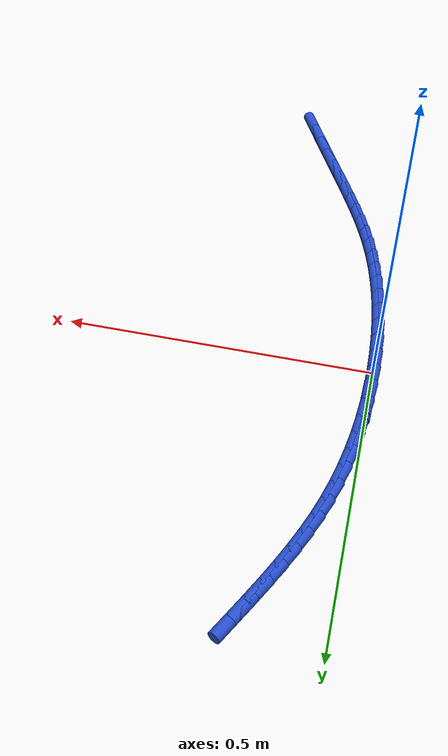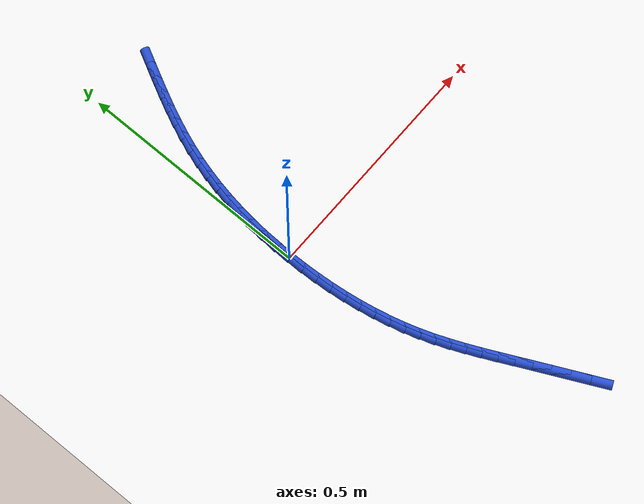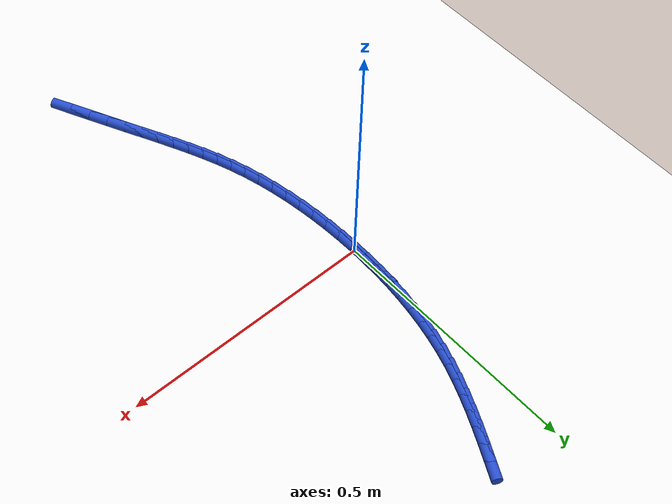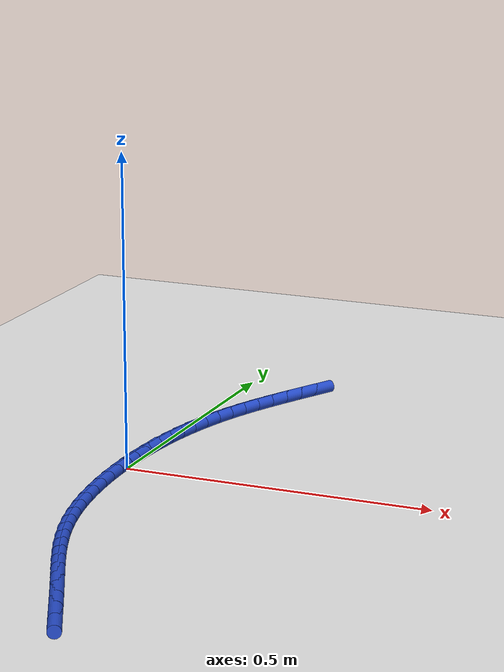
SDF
<sdf version="1.6">
 <world name="default">
  <model name="ground_plane">
   <static>1</static>
   <link name="link">
    <collision name="collision">
     <geometry><plane><normal>0 0 1</normal><size>100 100</size></plane></geometry>
     <surface><friction><ode><mu>100</mu><mu2>50</mu2></ode></friction></surface>
    </collision>
    <visual name="visual">
     <cast_shadows>0</cast_shadows>
     <geometry><plane><normal>0 0 1</normal><size>100 100</size></plane></geometry>
     <material>
      <script><uri>file://media/materials/scripts/gazebo.material</uri><name>Gazebo/WhiteGlow</name></script>
     </material>
    </visual>
   </link>
  </model>
  <model name="line">
   <link name="link_0">
    <pose>1.5612511283791264e-17 6.938893903907228e-17 0.01 0 1.57 1.5590957902085196</pose>
    <collision name="collision">
     <geometry><cylinder><radius>0.01</radius><length>0.08</length></cylinder></geometry>
    </collision>
    <visual name="visual">
     <material>
      <script><name>Gazebo/Blue</name><uri>file://media/materials/scripts/gazebo.material</uri></script>
     </material>
     <geometry><cylinder><radius>0.01</radius><length>0.08</length></cylinder></geometry>
    </visual>
   </link>
   <link name="link_1">
    <pose>0.00039795358519194497 0.03401001499382369 0.01 0 1.57 1.527344254759994</pose>
    <collision name="collision">
     <geometry><cylinder><radius>0.01</radius><length>0.08</length></cylinder></geometry>
    </collision>
    <visual name="visual">
     <material>
      <script><name>Gazebo/Blue</name><uri>file://media/materials/scripts/gazebo.material</uri></script>
     </material>
     <geometry><cylinder><radius>0.01</radius><length>0.08</length></cylinder></geometry>
    </visual>
   </link>
   <link name="link_2">
    <pose>0.0018704710210854767 0.06787699775144895 0.01 0 1.57 1.4943016651344494</pose>
    <collision name="collision">
     <geometry><cylinder><radius>0.01</radius><length>0.08</length></cylinder></geometry>
    </collision>
    <visual name="visual">
     <material>
      <script><name>Gazebo/Blue</name><uri>file://media/materials/scripts/gazebo.material</uri></script>
     </material>
     <geometry><cylinder><radius>0.01</radius><length>0.08</length></cylinder></geometry>
    </visual>
   </link>
   <link name="link_3">
    <pose>0.004448175908305287 0.1015090854414555 0.01 0 1.57 1.4597558159385076</pose>
    <collision name="collision">
     <geometry><cylinder><radius>0.01</radius><length>0.08</length></cylinder></geometry>
    </collision>
    <visual name="visual">
     <material>
      <script><name>Gazebo/Blue</name><uri>file://media/materials/scripts/gazebo.material</uri></script>
     </material>
     <geometry><cylinder><radius>0.01</radius><length>0.08</length></cylinder></geometry>
    </visual>
   </link>
   <link name="link_4">
    <pose>0.00816169184747604 0.1348144152324228 0.01 0 1.57 1.4234845401696197</pose>
    <collision name="collision">
     <geometry><cylinder><radius>0.01</radius><length>0.08</length></cylinder></geometry>
    </collision>
    <visual name="visual">
     <material>
      <script><name>Gazebo/Blue</name><uri>file://media/materials/scripts/gazebo.material</uri></script>
     </material>
     <geometry><cylinder><radius>0.01</radius><length>0.08</length></cylinder></geometry>
    </visual>
   </link>
   <link name="link_5">
    <pose>0.013041642439222418 0.16770112429293058 0.01 0 1.57 1.3852554352615685</pose>
    <collision name="collision">
     <geometry><cylinder><radius>0.01</radius><length>0.08</length></cylinder></geometry>
    </collision>
    <visual name="visual">
     <material>
      <script><name>Gazebo/Blue</name><uri>file://media/materials/scripts/gazebo.material</uri></script>
     </material>
     <geometry><cylinder><radius>0.01</radius><length>0.08</length></cylinder></geometry>
    </visual>
   </link>
   <link name="link_6">
    <pose>0.019118651284169095 0.20007734979155828 0.01 0 1.57 1.344826626539135</pose>
    <collision name="collision">
     <geometry><cylinder><radius>0.01</radius><length>0.08</length></cylinder></geometry>
    </collision>
    <visual name="visual">
     <material>
      <script><name>Gazebo/Blue</name><uri>file://media/materials/scripts/gazebo.material</uri></script>
     </material>
     <geometry><cylinder><radius>0.01</radius><length>0.08</length></cylinder></geometry>
    </visual>
   </link>
   <link name="link_7">
    <pose>0.026423341982940725 0.2318512288968855 0.01 0 1.57 1.3019489680391543</pose>
    <collision name="collision">
     <geometry><cylinder><radius>0.01</radius><length>0.08</length></cylinder></geometry>
    </collision>
    <visual name="visual">
     <material>
      <script><name>Gazebo/Blue</name><uri>file://media/materials/scripts/gazebo.material</uri></script>
     </material>
     <geometry><cylinder><radius>0.01</radius><length>0.08</length></cylinder></geometry>
    </visual>
   </link>
   <link name="link_8">
    <pose>0.034986338136162004 0.2629308987774918 0.01 0 1.57 1.2569548308997691</pose>
    <collision name="collision">
     <geometry><cylinder><radius>0.01</radius><length>0.08</length></cylinder></geometry>
    </collision>
    <visual name="visual">
     <material>
      <script><name>Gazebo/Blue</name><uri>file://media/materials/scripts/gazebo.material</uri></script>
     </material>
     <geometry><cylinder><radius>0.01</radius><length>0.08</length></cylinder></geometry>
    </visual>
   </link>
   <link name="link_9">
    <pose>0.04482512598660589 0.2932443470038685 0.01 0 1.57 1.2145632126685058</pose>
    <collision name="collision">
     <geometry><cylinder><radius>0.01</radius><length>0.08</length></cylinder></geometry>
    </collision>
    <visual name="visual">
     <material>
      <script><name>Gazebo/Blue</name><uri>file://media/materials/scripts/gazebo.material</uri></script>
     </material>
     <geometry><cylinder><radius>0.01</radius><length>0.08</length></cylinder></geometry>
    </visual>
   </link>
   <link name="link_10">
    <pose>0.05585215579845866 0.32287826934443 0.01 0 1.57 1.1776106224616119</pose>
    <collision name="collision">
     <geometry><cylinder><radius>0.01</radius><length>0.08</length></cylinder></geometry>
    </collision>
    <visual name="visual">
     <material>
      <script><name>Gazebo/Blue</name><uri>file://media/materials/scripts/gazebo.material</uri></script>
     </material>
     <geometry><cylinder><radius>0.01</radius><length>0.08</length></cylinder></geometry>
    </visual>
   </link>
   <link name="link_11">
    <pose>0.06792950222542031 0.35199547855595215 0.01 0 1.57 1.1466214942020267</pose>
    <collision name="collision">
     <geometry><cylinder><radius>0.01</radius><length>0.08</length></cylinder></geometry>
    </collision>
    <visual name="visual">
     <material>
      <script><name>Gazebo/Blue</name><uri>file://media/materials/scripts/gazebo.material</uri></script>
     </material>
     <geometry><cylinder><radius>0.01</radius><length>0.08</length></cylinder></geometry>
    </visual>
   </link>
   <link name="link_12">
    <pose>0.0809189224088432 0.38075926715284397 0.01 0 1.57 1.1219149535525959</pose>
    <collision name="collision">
     <geometry><cylinder><radius>0.01</radius><length>0.08</length></cylinder></geometry>
    </collision>
    <visual name="visual">
     <material>
      <script><name>Gazebo/Blue</name><uri>file://media/materials/scripts/gazebo.material</uri></script>
     </material>
     <geometry><cylinder><radius>0.01</radius><length>0.08</length></cylinder></geometry>
    </visual>
   </link>
   <link name="link_13">
    <pose>0.09468217349007967 0.4093329276495145 0.01 0 1.57 1.1036399254134206</pose>
    <collision name="collision">
     <geometry><cylinder><radius>0.01</radius><length>0.08</length></cylinder></geometry>
    </collision>
    <visual name="visual">
     <material>
      <script><name>Gazebo/Blue</name><uri>file://media/materials/scripts/gazebo.material</uri></script>
     </material>
     <geometry><cylinder><radius>0.01</radius><length>0.08</length></cylinder></geometry>
    </visual>
   </link>
   <link name="link_14">
    <pose>0.1090810126104822 0.43787975256037287 0.01 0 1.57 1.0918019489527087</pose>
    <collision name="collision">
     <geometry><cylinder><radius>0.01</radius><length>0.08</length></cylinder></geometry>
    </collision>
    <visual name="visual">
     <material>
      <script><name>Gazebo/Blue</name><uri>file://media/materials/scripts/gazebo.material</uri></script>
     </material>
     <geometry><cylinder><radius>0.01</radius><length>0.08</length></cylinder></geometry>
    </visual>
   </link>
   <link name="link_15">
    <pose>0.12397719691140308 0.46656303439982805 0.01 0 1.57 1.0862897684399544</pose>
    <collision name="collision">
     <geometry><cylinder><radius>0.01</radius><length>0.08</length></cylinder></geometry>
    </collision>
    <visual name="visual">
     <material>
      <script><name>Gazebo/Blue</name><uri>file://media/materials/scripts/gazebo.material</uri></script>
     </material>
     <geometry><cylinder><radius>0.01</radius><length>0.08</length></cylinder></geometry>
    </visual>
   </link>
   <link name="link_211">
    <pose>0.19179995478081058 -0.6150450424542935 0.01 0 1.57 -1.1196787258851202</pose>
    <collision name="collision">
     <geometry><cylinder><radius>0.01</radius><length>0.08</length></cylinder></geometry>
    </collision>
    <visual name="visual">
     <material>
      <script><name>Gazebo/Blue</name><uri>file://media/materials/scripts/gazebo.material</uri></script>
     </material>
     <geometry><cylinder><radius>0.01</radius><length>0.08</length></cylinder></geometry>
    </visual>
   </link>
   <link name="link_212">
    <pose>0.1730713750970058 -0.5763843123209897 0.01 0 1.57 -1.1206210887941224</pose>
    <collision name="collision">
     <geometry><cylinder><radius>0.01</radius><length>0.08</length></cylinder></geometry>
    </collision>
    <visual name="visual">
     <material>
      <script><name>Gazebo/Blue</name><uri>file://media/materials/scripts/gazebo.material</uri></script>
     </material>
     <geometry><cylinder><radius>0.01</radius><length>0.08</length></cylinder></geometry>
    </visual>
   </link>
   <link name="link_213">
    <pose>0.15512430109936418 -0.5392476620519215 0.01 0 1.57 -1.1179911878615287</pose>
    <collision name="collision">
     <geometry><cylinder><radius>0.01</radius><length>0.08</length></cylinder></geometry>
    </collision>
    <visual name="visual">
     <material>
      <script><name>Gazebo/Blue</name><uri>file://media/materials/scripts/gazebo.material</uri></script>
     </material>
     <geometry><cylinder><radius>0.01</radius><length>0.08</length></cylinder></geometry>
    </visual>
   </link>
   <link name="link_214">
    <pose>0.13800994131453947 -0.5040705293670197 0.01 0 1.57 -1.115353807216899</pose>
    <collision name="collision">
     <geometry><cylinder><radius>0.01</radius><length>0.08</length></cylinder></geometry>
    </collision>
    <visual name="visual">
     <material>
      <script><name>Gazebo/Blue</name><uri>file://media/materials/scripts/gazebo.material</uri></script>
     </material>
     <geometry><cylinder><radius>0.01</radius><length>0.08</length></cylinder></geometry>
    </visual>
   </link>
   <link name="link_215">
    <pose>0.12176984831348778 -0.47091295502308594 0.01 0 1.57 -1.117827241330881</pose>
    <collision name="collision">
     <geometry><cylinder><radius>0.01</radius><length>0.08</length></cylinder></geometry>
    </collision>
    <visual name="visual">
     <material>
      <script><name>Gazebo/Blue</name><uri>file://media/materials/scripts/gazebo.material</uri></script>
     </material>
     <geometry><cylinder><radius>0.01</radius><length>0.08</length></cylinder></geometry>
    </visual>
   </link>
   <link name="link_216">
    <pose>0.10643453084071519 -0.43940562622136603 0.01 0 1.57 -1.1264869415494472</pose>
    <collision name="collision">
     <geometry><cylinder><radius>0.01</radius><length>0.08</length></cylinder></geometry>
    </collision>
    <visual name="visual">
     <material>
      <script><name>Gazebo/Blue</name><uri>file://media/materials/scripts/gazebo.material</uri></script>
     </material>
     <geometry><cylinder><radius>0.01</radius><length>0.08</length></cylinder></geometry>
    </visual>
   </link>
   <link name="link_217">
    <pose>0.09203389314210533 -0.40915572892161034 0.01 0 1.57 -1.1419399685530545</pose>
    <collision name="collision">
     <geometry><cylinder><radius>0.01</radius><length>0.08</length></cylinder></geometry>
    </collision>
    <visual name="visual">
     <material>
      <script><name>Gazebo/Blue</name><uri>file://media/materials/scripts/gazebo.material</uri></script>
     </material>
     <geometry><cylinder><radius>0.01</radius><length>0.08</length></cylinder></geometry>
    </visual>
   </link>
   <link name="link_218">
    <pose>0.0785978394635422 -0.3797704490835705 0.01 0 1.57 -1.1644422936986525</pose>
    <collision name="collision">
     <geometry><cylinder><radius>0.01</radius><length>0.08</length></cylinder></geometry>
    </collision>
    <visual name="visual">
     <material>
      <script><name>Gazebo/Blue</name><uri>file://media/materials/scripts/gazebo.material</uri></script>
     </material>
     <geometry><cylinder><radius>0.01</radius><length>0.08</length></cylinder></geometry>
    </visual>
   </link>
   <link name="link_219">
    <pose>0.06615627405090946 -0.35085697266699706 0.01 0 1.57 -1.1937814677735776</pose>
    <collision name="collision">
     <geometry><cylinder><radius>0.01</radius><length>0.08</length></cylinder></geometry>
    </collision>
    <visual name="visual">
     <material>
      <script><name>Gazebo/Blue</name><uri>file://media/materials/scripts/gazebo.material</uri></script>
     </material>
     <geometry><cylinder><radius>0.01</radius><length>0.08</length></cylinder></geometry>
    </visual>
   </link>
   <link name="link_220">
    <pose>0.05473910115009172 -0.3220224856316429 0.01 0 1.57 -1.2292103192321149</pose>
    <collision name="collision">
     <geometry><cylinder><radius>0.01</radius><length>0.08</length></cylinder></geometry>
    </collision>
    <visual name="visual">
     <material>
      <script><name>Gazebo/Blue</name><uri>file://media/materials/scripts/gazebo.material</uri></script>
     </material>
     <geometry><cylinder><radius>0.01</radius><length>0.08</length></cylinder></geometry>
    </visual>
   </link>
   <link name="link_221">
    <pose>0.04437622500697265 -0.2928741739372587 0.01 0 1.57 -1.2694569189764902</pose>
    <collision name="collision">
     <geometry><cylinder><radius>0.01</radius><length>0.08</length></cylinder></geometry>
    </collision>
    <visual name="visual">
     <material>
      <script><name>Gazebo/Blue</name><uri>file://media/materials/scripts/gazebo.material</uri></script>
     </material>
     <geometry><cylinder><radius>0.01</radius><length>0.08</length></cylinder></geometry>
    </visual>
   </link>
   <link name="link_222">
    <pose>0.03509747913180698 -0.26302020505161916 0.01 0 1.57 -1.311291437974732</pose>
    <collision name="collision">
     <geometry><cylinder><radius>0.01</radius><length>0.08</length></cylinder></geometry>
    </collision>
    <visual name="visual">
     <material>
      <script><name>Gazebo/Blue</name><uri>file://media/materials/scripts/gazebo.material</uri></script>
     </material>
     <geometry><cylinder><radius>0.01</radius><length>0.08</length></cylinder></geometry>
    </visual>
   </link>
   <link name="link_223">
    <pose>0.0269214743200955 -0.23222446972776226 0.01 0 1.57 -1.3507740607574792</pose>
    <collision name="collision">
     <geometry><cylinder><radius>0.01</radius><length>0.08</length></cylinder></geometry>
    </collision>
    <visual name="visual">
     <material>
      <script><name>Gazebo/Blue</name><uri>file://media/materials/scripts/gazebo.material</uri></script>
     </material>
     <geometry><cylinder><radius>0.01</radius><length>0.08</length></cylinder></geometry>
    </visual>
   </link>
   <link name="link_224">
    <pose>0.019843421376447637 -0.20057555051895648 0.01 0 1.57 -1.387899544516805</pose>
    <collision name="collision">
     <geometry><cylinder><radius>0.01</radius><length>0.08</length></cylinder></geometry>
    </collision>
    <visual name="visual">
     <material>
      <script><name>Gazebo/Blue</name><uri>file://media/materials/scripts/gazebo.material</uri></script>
     </material>
     <geometry><cylinder><radius>0.01</radius><length>0.08</length></cylinder></geometry>
    </visual>
   </link>
   <link name="link_225">
    <pose>0.01385560435543654 -0.1682026407523051 0.01 0 1.57 -1.4230890155699754</pose>
    <collision name="collision">
     <geometry><cylinder><radius>0.01</radius><length>0.08</length></cylinder></geometry>
    </collision>
    <visual name="visual">
     <material>
      <script><name>Gazebo/Blue</name><uri>file://media/materials/scripts/gazebo.material</uri></script>
     </material>
     <geometry><cylinder><radius>0.01</radius><length>0.08</length></cylinder></geometry>
    </visual>
   </link>
   <link name="link_226">
    <pose>0.00895030731163556 -0.13523493375491202 0.01 0 1.57 -1.4567225691409316</pose>
    <collision name="collision">
     <geometry><cylinder><radius>0.01</radius><length>0.08</length></cylinder></geometry>
    </collision>
    <visual name="visual">
     <material>
      <script><name>Gazebo/Blue</name><uri>file://media/materials/scripts/gazebo.material</uri></script>
     </material>
     <geometry><cylinder><radius>0.01</radius><length>0.08</length></cylinder></geometry>
    </visual>
   </link>
   <link name="link_227">
    <pose>0.005119814299618057 -0.10180162285388114 0.01 0 1.57 -1.4891474032990009</pose>
    <collision name="collision">
     <geometry><cylinder><radius>0.01</radius><length>0.08</length></cylinder></geometry>
    </collision>
    <visual name="visual">
     <material>
      <script><name>Gazebo/Blue</name><uri>file://media/materials/scripts/gazebo.material</uri></script>
     </material>
     <geometry><cylinder><radius>0.01</radius><length>0.08</length></cylinder></geometry>
    </visual>
   </link>
   <link name="link_228">
    <pose>0.00235640937395734 -0.06803190137631551 0.01 0 1.57 -1.5206856843766254</pose>
    <collision name="collision">
     <geometry><cylinder><radius>0.01</radius><length>0.08</length></cylinder></geometry>
    </collision>
    <visual name="visual">
     <material>
      <script><name>Gazebo/Blue</name><uri>file://media/materials/scripts/gazebo.material</uri></script>
     </material>
     <geometry><cylinder><radius>0.01</radius><length>0.08</length></cylinder></geometry>
    </visual>
   </link>
   <link name="link_229">
    <pose>0.0006523765892269013 -0.03405496264932079 0.01 0 1.57 -1.5516420904021848</pose>
    <collision name="collision">
     <geometry><cylinder><radius>0.01</radius><length>0.08</length></cylinder></geometry>
    </collision>
    <visual name="visual">
     <material>
      <script><name>Gazebo/Blue</name><uri>file://media/materials/scripts/gazebo.material</uri></script>
     </material>
     <geometry><cylinder><radius>0.01</radius><length>0.08</length></cylinder></geometry>
    </visual>
   </link>
   <link name="link_230">
    <pose>2.3418766925686896e-17 -8.326672684688674e-17 0.01 0 1.57 1.559281542193129</pose>
    <collision name="collision">
     <geometry><cylinder><radius>0.01</radius><length>0.08</length></cylinder></geometry>
    </collision>
    <visual name="visual">
     <material>
      <script><name>Gazebo/Blue</name><uri>file://media/materials/scripts/gazebo.material</uri></script>
     </material>
     <geometry><cylinder><radius>0.01</radius><length>0.08</length></cylinder></geometry>
    </visual>
   </link>
   <link name="link_231">
    <pose>0.000391563660850058 0.03400379324454275 0.01 0 1.57 1.5286083886168922</pose>
    <collision name="collision">
     <geometry><cylinder><radius>0.01</radius><length>0.08</length></cylinder></geometry>
    </collision>
    <visual name="visual">
     <material>
      <script><name>Gazebo/Blue</name><uri>file://media/materials/scripts/gazebo.material</uri></script>
     </material>
     <geometry><cylinder><radius>0.01</radius><length>0.08</length></cylinder></geometry>
    </visual>
   </link>
   <link name="link_232">
    <pose>0.0018193516263503694 0.06782722375720374 0.01 0 1.57 1.5439794326583518</pose>
    <collision name="collision">
     <geometry><cylinder><radius>0.01</radius><length>0.08</length></cylinder></geometry>
    </collision>
    <visual name="visual">
     <material>
      <script><name>Gazebo/Blue</name><uri>file://media/materials/scripts/gazebo.material</uri></script>
     </material>
     <geometry><cylinder><radius>0.01</radius><length>0.08</length></cylinder></geometry>
    </visual>
   </link>
  </model>
 </world>
</sdf>
